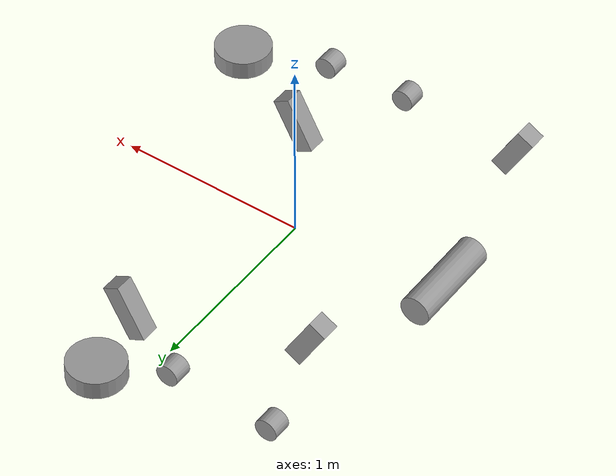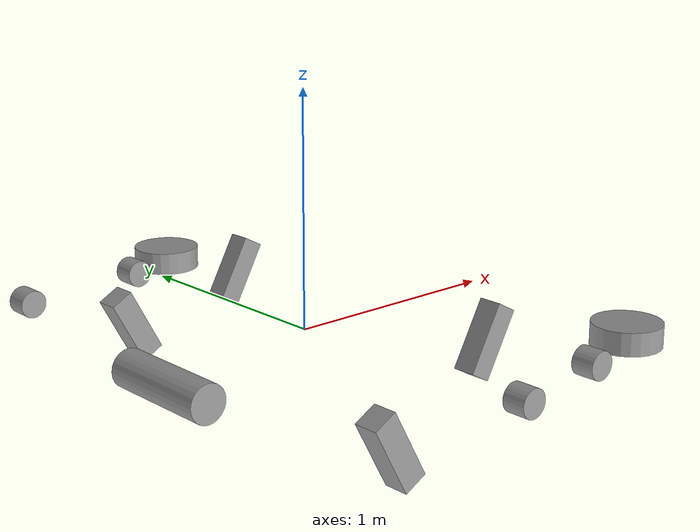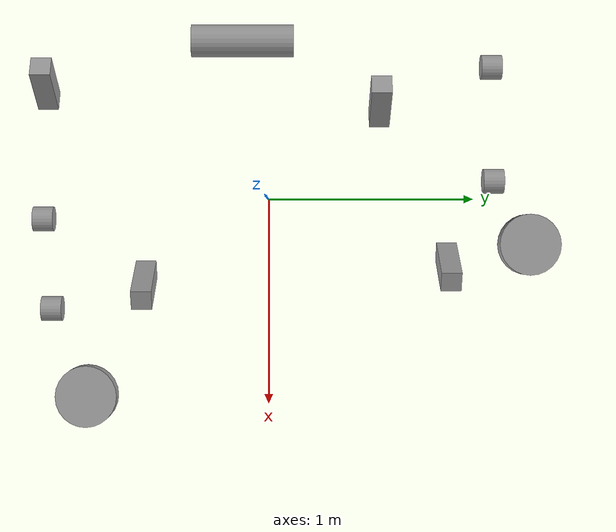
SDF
<?xml version='1.0'?>
<sdf version='1.7'>
  <model name='model'>
    <link name='link_0'>
      <inertial>
        <mass>1</mass>
        <inertia>
          <ixx>0.145833</ixx>
          <ixy>0</ixy>
          <ixz>0</ixz>
          <iyy>0.145833</iyy>
          <iyz>0</iyz>
          <izz>0.125</izz>
        </inertia>
        <pose>0 0 0 0 -0 0</pose>
      </inertial>
      <pose>0.962972 -0.892011 -0.006611 0 -0 0</pose>
      <gravity>1</gravity>
      <self_collide>0</self_collide>
      <kinematic>0</kinematic>
      <enable_wind>0</enable_wind>
      <visual name='visual'>
        <pose>0 0 0 0 -0 0</pose>
        <geometry>
          <cylinder>
            <radius>0.15</radius>
            <length>0.1</length>
          </cylinder>
        </geometry>
        <material>
          <lighting>1</lighting>
          <script>
            <uri>file://media/materials/scripts/gazebo.material</uri>
            <name>Gazebo/Grey</name>
          </script>
          <shader type='pixel'>
            <normal_map>__default__</normal_map>
          </shader>
          <ambient>0.3 0.3 0.3 1</ambient>
          <diffuse>0.7 0.7 0.7 1</diffuse>
          <specular>0.01 0.01 0.01 1</specular>
          <emissive>0 0 0 1</emissive>
        </material>
        <transparency>0</transparency>
        <cast_shadows>1</cast_shadows>
      </visual>
      <collision name='collision'>
        <laser_retro>0</laser_retro>
        <max_contacts>10</max_contacts>
        <pose>0 0 0 0 -0 0</pose>
        <geometry>
          <cylinder>
            <radius>0.15</radius>
            <length>0.1</length>
          </cylinder>
        </geometry>
        <surface>
          <friction>
            <ode>
              <mu>1</mu>
              <mu2>1</mu2>
              <fdir1>0 0 0</fdir1>
              <slip1>0</slip1>
              <slip2>0</slip2>
            </ode>
            <torsional>
              <coefficient>1</coefficient>
              <patch_radius>0</patch_radius>
              <surface_radius>0</surface_radius>
              <use_patch_radius>1</use_patch_radius>
              <ode>
                <slip>0</slip>
              </ode>
            </torsional>
          </friction>
          <bounce>
            <restitution_coefficient>0</restitution_coefficient>
            <threshold>1e+06</threshold>
          </bounce>
          <contact>
            <collide_without_contact>0</collide_without_contact>
            <collide_without_contact_bitmask>1</collide_without_contact_bitmask>
            <collide_bitmask>1</collide_bitmask>
            <ode>
              <soft_cfm>0</soft_cfm>
              <soft_erp>0.2</soft_erp>
              <kp>1e+13</kp>
              <kd>1</kd>
              <max_vel>0.01</max_vel>
              <min_depth>0</min_depth>
            </ode>
            <bullet>
              <split_impulse>1</split_impulse>
              <split_impulse_penetration_threshold>-0.01</split_impulse_penetration_threshold>
              <soft_cfm>0</soft_cfm>
              <soft_erp>0.2</soft_erp>
              <kp>1e+13</kp>
              <kd>1</kd>
            </bullet>
          </contact>
        </surface>
      </collision>
    </link>
    <link name='link_0_clone'>
      <inertial>
        <mass>1</mass>
        <inertia>
          <ixx>0.145833</ixx>
          <ixy>0</ixy>
          <ixz>0</ixz>
          <iyy>0.145833</iyy>
          <iyz>0</iyz>
          <izz>0.125</izz>
        </inertia>
        <pose>0 0 0 0 -0 0</pose>
      </inertial>
      <pose>0.221399 1.27715 -0.006611 0 -0 0</pose>
      <gravity>1</gravity>
      <self_collide>0</self_collide>
      <kinematic>0</kinematic>
      <enable_wind>0</enable_wind>
      <visual name='visual'>
        <pose>0 0 0 0 -0 0</pose>
        <geometry>
          <cylinder>
            <radius>0.15</radius>
            <length>0.1</length>
          </cylinder>
        </geometry>
        <material>
          <lighting>1</lighting>
          <script>
            <uri>file://media/materials/scripts/gazebo.material</uri>
            <name>Gazebo/Grey</name>
          </script>
          <shader type='pixel'>
            <normal_map>__default__</normal_map>
          </shader>
          <ambient>0.3 0.3 0.3 1</ambient>
          <diffuse>0.7 0.7 0.7 1</diffuse>
          <specular>0.01 0.01 0.01 1</specular>
          <emissive>0 0 0 1</emissive>
        </material>
        <transparency>0</transparency>
        <cast_shadows>1</cast_shadows>
      </visual>
      <collision name='collision'>
        <laser_retro>0</laser_retro>
        <max_contacts>10</max_contacts>
        <pose>0 0 0 0 -0 0</pose>
        <geometry>
          <cylinder>
            <radius>0.15</radius>
            <length>0.1</length>
          </cylinder>
        </geometry>
        <surface>
          <friction>
            <ode>
              <mu>1</mu>
              <mu2>1</mu2>
              <fdir1>0 0 0</fdir1>
              <slip1>0</slip1>
              <slip2>0</slip2>
            </ode>
            <torsional>
              <coefficient>1</coefficient>
              <patch_radius>0</patch_radius>
              <surface_radius>0</surface_radius>
              <use_patch_radius>1</use_patch_radius>
              <ode>
                <slip>0</slip>
              </ode>
            </torsional>
          </friction>
          <bounce>
            <restitution_coefficient>0</restitution_coefficient>
            <threshold>1e+06</threshold>
          </bounce>
          <contact>
            <collide_without_contact>0</collide_without_contact>
            <collide_without_contact_bitmask>1</collide_without_contact_bitmask>
            <collide_bitmask>1</collide_bitmask>
            <ode>
              <soft_cfm>0</soft_cfm>
              <soft_erp>0.2</soft_erp>
              <kp>1e+13</kp>
              <kd>1</kd>
              <max_vel>0.01</max_vel>
              <min_depth>0</min_depth>
            </ode>
            <bullet>
              <split_impulse>1</split_impulse>
              <split_impulse_penetration_threshold>-0.01</split_impulse_penetration_threshold>
              <soft_cfm>0</soft_cfm>
              <soft_erp>0.2</soft_erp>
              <kp>1e+13</kp>
              <kd>1</kd>
            </bullet>
          </contact>
        </surface>
      </collision>
    </link>
    <link name='link_1'>
      <inertial>
        <mass>1</mass>
        <inertia>
          <ixx>0.145833</ixx>
          <ixy>0</ixy>
          <ixz>0</ixz>
          <iyy>0.145833</iyy>
          <iyz>0</iyz>
          <izz>0.125</izz>
        </inertia>
        <pose>0 0 0 0 -0 0</pose>
      </inertial>
      <pose>0.533975 -1.0577 0.016159 0 -0 0</pose>
      <gravity>1</gravity>
      <self_collide>0</self_collide>
      <kinematic>0</kinematic>
      <enable_wind>0</enable_wind>
      <visual name='visual'>
        <pose>0 0 0 1.5708 -0 0</pose>
        <geometry>
          <cylinder>
            <radius>0.06</radius>
            <length>0.1</length>
          </cylinder>
        </geometry>
        <material>
          <lighting>1</lighting>
          <script>
            <uri>file://media/materials/scripts/gazebo.material</uri>
            <name>Gazebo/Grey</name>
          </script>
          <shader type='pixel'>
            <normal_map>__default__</normal_map>
          </shader>
          <ambient>0.3 0.3 0.3 1</ambient>
          <diffuse>0.7 0.7 0.7 1</diffuse>
          <specular>0.01 0.01 0.01 1</specular>
          <emissive>0 0 0 1</emissive>
        </material>
        <transparency>0</transparency>
        <cast_shadows>1</cast_shadows>
      </visual>
      <collision name='collision'>
        <laser_retro>0</laser_retro>
        <max_contacts>10</max_contacts>
        <pose>0 0 0 1.5708 -0 0</pose>
        <geometry>
          <cylinder>
            <radius>0.06</radius>
            <length>0.1</length>
          </cylinder>
        </geometry>
        <surface>
          <friction>
            <ode>
              <mu>1</mu>
              <mu2>1</mu2>
              <fdir1>0 0 0</fdir1>
              <slip1>0</slip1>
              <slip2>0</slip2>
            </ode>
            <torsional>
              <coefficient>1</coefficient>
              <patch_radius>0</patch_radius>
              <surface_radius>0</surface_radius>
              <use_patch_radius>1</use_patch_radius>
              <ode>
                <slip>0</slip>
              </ode>
            </torsional>
          </friction>
          <bounce>
            <restitution_coefficient>0</restitution_coefficient>
            <threshold>1e+06</threshold>
          </bounce>
          <contact>
            <collide_without_contact>0</collide_without_contact>
            <collide_without_contact_bitmask>1</collide_without_contact_bitmask>
            <collide_bitmask>1</collide_bitmask>
            <ode>
              <soft_cfm>0</soft_cfm>
              <soft_erp>0.2</soft_erp>
              <kp>1e+13</kp>
              <kd>1</kd>
              <max_vel>0.01</max_vel>
              <min_depth>0</min_depth>
            </ode>
            <bullet>
              <split_impulse>1</split_impulse>
              <split_impulse_penetration_threshold>-0.01</split_impulse_penetration_threshold>
              <soft_cfm>0</soft_cfm>
              <soft_erp>0.2</soft_erp>
              <kp>1e+13</kp>
              <kd>1</kd>
            </bullet>
          </contact>
        </surface>
      </collision>
    </link>
    <link name='link_1_clone'>
      <inertial>
        <mass>1</mass>
        <inertia>
          <ixx>0.145833</ixx>
          <ixy>0</ixy>
          <ixz>0</ixz>
          <iyy>0.145833</iyy>
          <iyz>0</iyz>
          <izz>0.125</izz>
        </inertia>
        <pose>0 0 0 0 -0 0</pose>
      </inertial>
      <pose>-0.088524 1.09642 0.016159 0 -0 0</pose>
      <gravity>1</gravity>
      <self_collide>0</self_collide>
      <kinematic>0</kinematic>
      <enable_wind>0</enable_wind>
      <visual name='visual'>
        <pose>0 0 0 1.5708 -0 0</pose>
        <geometry>
          <cylinder>
            <radius>0.06</radius>
            <length>0.1</length>
          </cylinder>
        </geometry>
        <material>
          <lighting>1</lighting>
          <script>
            <uri>file://media/materials/scripts/gazebo.material</uri>
            <name>Gazebo/Grey</name>
          </script>
          <shader type='pixel'>
            <normal_map>__default__</normal_map>
          </shader>
          <ambient>0.3 0.3 0.3 1</ambient>
          <diffuse>0.7 0.7 0.7 1</diffuse>
          <specular>0.01 0.01 0.01 1</specular>
          <emissive>0 0 0 1</emissive>
        </material>
        <transparency>0</transparency>
        <cast_shadows>1</cast_shadows>
      </visual>
      <collision name='collision'>
        <laser_retro>0</laser_retro>
        <max_contacts>10</max_contacts>
        <pose>0 0 0 1.5708 -0 0</pose>
        <geometry>
          <cylinder>
            <radius>0.06</radius>
            <length>0.1</length>
          </cylinder>
        </geometry>
        <surface>
          <friction>
            <ode>
              <mu>1</mu>
              <mu2>1</mu2>
              <fdir1>0 0 0</fdir1>
              <slip1>0</slip1>
              <slip2>0</slip2>
            </ode>
            <torsional>
              <coefficient>1</coefficient>
              <patch_radius>0</patch_radius>
              <surface_radius>0</surface_radius>
              <use_patch_radius>1</use_patch_radius>
              <ode>
                <slip>0</slip>
              </ode>
            </torsional>
          </friction>
          <bounce>
            <restitution_coefficient>0</restitution_coefficient>
            <threshold>1e+06</threshold>
          </bounce>
          <contact>
            <collide_without_contact>0</collide_without_contact>
            <collide_without_contact_bitmask>1</collide_without_contact_bitmask>
            <collide_bitmask>1</collide_bitmask>
            <ode>
              <soft_cfm>0</soft_cfm>
              <soft_erp>0.2</soft_erp>
              <kp>1e+13</kp>
              <kd>1</kd>
              <max_vel>0.01</max_vel>
              <min_depth>0</min_depth>
            </ode>
            <bullet>
              <split_impulse>1</split_impulse>
              <split_impulse_penetration_threshold>-0.01</split_impulse_penetration_threshold>
              <soft_cfm>0</soft_cfm>
              <soft_erp>0.2</soft_erp>
              <kp>1e+13</kp>
              <kd>1</kd>
            </bullet>
          </contact>
        </surface>
      </collision>
    </link>
    <link name='link_2'>
      <inertial>
        <mass>1</mass>
        <inertia>
          <ixx>0.145833</ixx>
          <ixy>0</ixy>
          <ixz>0</ixz>
          <iyy>0.145833</iyy>
          <iyz>0</iyz>
          <izz>0.125</izz>
        </inertia>
        <pose>0 0 0 0 -0 0</pose>
      </inertial>
      <pose>0.095543 -1.10354 -0.006611 0 -0 0</pose>
      <gravity>1</gravity>
      <self_collide>0</self_collide>
      <kinematic>0</kinematic>
      <enable_wind>0</enable_wind>
      <visual name='visual'>
        <pose>0 0 0 1.5708 -0 0</pose>
        <geometry>
          <cylinder>
            <radius>0.06</radius>
            <length>0.1</length>
          </cylinder>
        </geometry>
        <material>
          <lighting>1</lighting>
          <script>
            <uri>file://media/materials/scripts/gazebo.material</uri>
            <name>Gazebo/Grey</name>
          </script>
          <shader type='pixel'>
            <normal_map>__default__</normal_map>
          </shader>
          <ambient>0.3 0.3 0.3 1</ambient>
          <diffuse>0.7 0.7 0.7 1</diffuse>
          <specular>0.01 0.01 0.01 1</specular>
          <emissive>0 0 0 1</emissive>
        </material>
        <transparency>0</transparency>
        <cast_shadows>1</cast_shadows>
      </visual>
      <collision name='collision'>
        <laser_retro>0</laser_retro>
        <max_contacts>10</max_contacts>
        <pose>0 0 0 1.5708 -0 0</pose>
        <geometry>
          <cylinder>
            <radius>0.06</radius>
            <length>0.1</length>
          </cylinder>
        </geometry>
        <surface>
          <friction>
            <ode>
              <mu>1</mu>
              <mu2>1</mu2>
              <fdir1>0 0 0</fdir1>
              <slip1>0</slip1>
              <slip2>0</slip2>
            </ode>
            <torsional>
              <coefficient>1</coefficient>
              <patch_radius>0</patch_radius>
              <surface_radius>0</surface_radius>
              <use_patch_radius>1</use_patch_radius>
              <ode>
                <slip>0</slip>
              </ode>
            </torsional>
          </friction>
          <bounce>
            <restitution_coefficient>0</restitution_coefficient>
            <threshold>1e+06</threshold>
          </bounce>
          <contact>
            <collide_without_contact>0</collide_without_contact>
            <collide_without_contact_bitmask>1</collide_without_contact_bitmask>
            <collide_bitmask>1</collide_bitmask>
            <ode>
              <soft_cfm>0</soft_cfm>
              <soft_erp>0.2</soft_erp>
              <kp>1e+13</kp>
              <kd>1</kd>
              <max_vel>0.01</max_vel>
              <min_depth>0</min_depth>
            </ode>
            <bullet>
              <split_impulse>1</split_impulse>
              <split_impulse_penetration_threshold>-0.01</split_impulse_penetration_threshold>
              <soft_cfm>0</soft_cfm>
              <soft_erp>0.2</soft_erp>
              <kp>1e+13</kp>
              <kd>1</kd>
            </bullet>
          </contact>
        </surface>
      </collision>
    </link>
    <link name='link_2_clone'>
      <inertial>
        <mass>1</mass>
        <inertia>
          <ixx>0.145833</ixx>
          <ixy>0</ixy>
          <ixz>0</ixz>
          <iyy>0.145833</iyy>
          <iyz>0</iyz>
          <izz>0.125</izz>
        </inertia>
        <pose>0 0 0 0 -0 0</pose>
      </inertial>
      <pose>-0.64716 1.08882 -0.006611 0 -0 0</pose>
      <gravity>1</gravity>
      <self_collide>0</self_collide>
      <kinematic>0</kinematic>
      <enable_wind>0</enable_wind>
      <visual name='visual'>
        <pose>0 0 0 1.5708 -0 0</pose>
        <geometry>
          <cylinder>
            <radius>0.06</radius>
            <length>0.1</length>
          </cylinder>
        </geometry>
        <material>
          <lighting>1</lighting>
          <script>
            <uri>file://media/materials/scripts/gazebo.material</uri>
            <name>Gazebo/Grey</name>
          </script>
          <shader type='pixel'>
            <normal_map>__default__</normal_map>
          </shader>
          <ambient>0.3 0.3 0.3 1</ambient>
          <diffuse>0.7 0.7 0.7 1</diffuse>
          <specular>0.01 0.01 0.01 1</specular>
          <emissive>0 0 0 1</emissive>
        </material>
        <transparency>0</transparency>
        <cast_shadows>1</cast_shadows>
      </visual>
      <collision name='collision'>
        <laser_retro>0</laser_retro>
        <max_contacts>10</max_contacts>
        <pose>0 0 0 1.5708 -0 0</pose>
        <geometry>
          <cylinder>
            <radius>0.06</radius>
            <length>0.1</length>
          </cylinder>
        </geometry>
        <surface>
          <friction>
            <ode>
              <mu>1</mu>
              <mu2>1</mu2>
              <fdir1>0 0 0</fdir1>
              <slip1>0</slip1>
              <slip2>0</slip2>
            </ode>
            <torsional>
              <coefficient>1</coefficient>
              <patch_radius>0</patch_radius>
              <surface_radius>0</surface_radius>
              <use_patch_radius>1</use_patch_radius>
              <ode>
                <slip>0</slip>
              </ode>
            </torsional>
          </friction>
          <bounce>
            <restitution_coefficient>0</restitution_coefficient>
            <threshold>1e+06</threshold>
          </bounce>
          <contact>
            <collide_without_contact>0</collide_without_contact>
            <collide_without_contact_bitmask>1</collide_without_contact_bitmask>
            <collide_bitmask>1</collide_bitmask>
            <ode>
              <soft_cfm>0</soft_cfm>
              <soft_erp>0.2</soft_erp>
              <kp>1e+13</kp>
              <kd>1</kd>
              <max_vel>0.01</max_vel>
              <min_depth>0</min_depth>
            </ode>
            <bullet>
              <split_impulse>1</split_impulse>
              <split_impulse_penetration_threshold>-0.01</split_impulse_penetration_threshold>
              <soft_cfm>0</soft_cfm>
              <soft_erp>0.2</soft_erp>
              <kp>1e+13</kp>
              <kd>1</kd>
            </bullet>
          </contact>
        </surface>
      </collision>
    </link>
    <link name='link_3'>
      <inertial>
        <mass>1</mass>
        <inertia>
          <ixx>0.166667</ixx>
          <ixy>0</ixy>
          <ixz>0</ixz>
          <iyy>0.166667</iyy>
          <iyz>0</iyz>
          <izz>0.166667</izz>
        </inertia>
        <pose>0 0 0 0 -0 0</pose>
      </inertial>
      <pose>-0.566221 -1.09881 -0.006611 0 -0 0</pose>
      <gravity>1</gravity>
      <self_collide>0</self_collide>
      <kinematic>0</kinematic>
      <enable_wind>0</enable_wind>
      <visual name='visual'>
        <pose>0 0 0 0 -0.5 0</pose>
        <geometry>
          <box>
            <size>0.1 0.1 0.3</size>
          </box>
        </geometry>
        <material>
          <lighting>1</lighting>
          <script>
            <uri>file://media/materials/scripts/gazebo.material</uri>
            <name>Gazebo/Grey</name>
          </script>
          <shader type='pixel'>
            <normal_map>__default__</normal_map>
          </shader>
          <ambient>0.3 0.3 0.3 1</ambient>
          <diffuse>0.7 0.7 0.7 1</diffuse>
          <specular>0.01 0.01 0.01 1</specular>
          <emissive>0 0 0 1</emissive>
        </material>
        <transparency>0</transparency>
        <cast_shadows>1</cast_shadows>
      </visual>
      <collision name='collision'>
        <laser_retro>0</laser_retro>
        <max_contacts>10</max_contacts>
        <pose>0 0 0 0 -0.5 0</pose>
        <geometry>
          <box>
            <size>0.1 0.1 0.3</size>
          </box>
        </geometry>
        <surface>
          <friction>
            <ode>
              <mu>1</mu>
              <mu2>1</mu2>
              <fdir1>0 0 0</fdir1>
              <slip1>0</slip1>
              <slip2>0</slip2>
            </ode>
            <torsional>
              <coefficient>1</coefficient>
              <patch_radius>0</patch_radius>
              <surface_radius>0</surface_radius>
              <use_patch_radius>1</use_patch_radius>
              <ode>
                <slip>0</slip>
              </ode>
            </torsional>
          </friction>
          <bounce>
            <restitution_coefficient>0</restitution_coefficient>
            <threshold>1e+06</threshold>
          </bounce>
          <contact>
            <collide_without_contact>0</collide_without_contact>
            <collide_without_contact_bitmask>1</collide_without_contact_bitmask>
            <collide_bitmask>1</collide_bitmask>
            <ode>
              <soft_cfm>0</soft_cfm>
              <soft_erp>0.2</soft_erp>
              <kp>1e+13</kp>
              <kd>1</kd>
              <max_vel>0.01</max_vel>
              <min_depth>0</min_depth>
            </ode>
            <bullet>
              <split_impulse>1</split_impulse>
              <split_impulse_penetration_threshold>-0.01</split_impulse_penetration_threshold>
              <soft_cfm>0</soft_cfm>
              <soft_erp>0.2</soft_erp>
              <kp>1e+13</kp>
              <kd>1</kd>
            </bullet>
          </contact>
        </surface>
      </collision>
    </link>
    <link name='link_3_clone'>
      <inertial>
        <mass>1</mass>
        <inertia>
          <ixx>0.166667</ixx>
          <ixy>0</ixy>
          <ixz>0</ixz>
          <iyy>0.166667</iyy>
          <iyz>0</iyz>
          <izz>0.166667</izz>
        </inertia>
        <pose>0 0 0 0 -0 0</pose>
      </inertial>
      <pose>-0.479561 0.546893 -0.006611 0 -0 0</pose>
      <gravity>1</gravity>
      <self_collide>0</self_collide>
      <kinematic>0</kinematic>
      <enable_wind>0</enable_wind>
      <visual name='visual'>
        <pose>0 0 0 0 -0.5 0</pose>
        <geometry>
          <box>
            <size>0.1 0.1 0.3</size>
          </box>
        </geometry>
        <material>
          <lighting>1</lighting>
          <script>
            <uri>file://media/materials/scripts/gazebo.material</uri>
            <name>Gazebo/Grey</name>
          </script>
          <shader type='pixel'>
            <normal_map>__default__</normal_map>
          </shader>
          <ambient>0.3 0.3 0.3 1</ambient>
          <diffuse>0.7 0.7 0.7 1</diffuse>
          <specular>0.01 0.01 0.01 1</specular>
          <emissive>0 0 0 1</emissive>
        </material>
        <transparency>0</transparency>
        <cast_shadows>1</cast_shadows>
      </visual>
      <collision name='collision'>
        <laser_retro>0</laser_retro>
        <max_contacts>10</max_contacts>
        <pose>0 0 0 0 -0.5 0</pose>
        <geometry>
          <box>
            <size>0.1 0.1 0.3</size>
          </box>
        </geometry>
        <surface>
          <friction>
            <ode>
              <mu>1</mu>
              <mu2>1</mu2>
              <fdir1>0 0 0</fdir1>
              <slip1>0</slip1>
              <slip2>0</slip2>
            </ode>
            <torsional>
              <coefficient>1</coefficient>
              <patch_radius>0</patch_radius>
              <surface_radius>0</surface_radius>
              <use_patch_radius>1</use_patch_radius>
              <ode>
                <slip>0</slip>
              </ode>
            </torsional>
          </friction>
          <bounce>
            <restitution_coefficient>0</restitution_coefficient>
            <threshold>1e+06</threshold>
          </bounce>
          <contact>
            <collide_without_contact>0</collide_without_contact>
            <collide_without_contact_bitmask>1</collide_without_contact_bitmask>
            <collide_bitmask>1</collide_bitmask>
            <ode>
              <soft_cfm>0</soft_cfm>
              <soft_erp>0.2</soft_erp>
              <kp>1e+13</kp>
              <kd>1</kd>
              <max_vel>0.01</max_vel>
              <min_depth>0</min_depth>
            </ode>
            <bullet>
              <split_impulse>1</split_impulse>
              <split_impulse_penetration_threshold>-0.01</split_impulse_penetration_threshold>
              <soft_cfm>0</soft_cfm>
              <soft_erp>0.2</soft_erp>
              <kp>1e+13</kp>
              <kd>1</kd>
            </bullet>
          </contact>
        </surface>
      </collision>
    </link>
    <link name='link_4'>
      <inertial>
        <mass>1</mass>
        <inertia>
          <ixx>0.166667</ixx>
          <ixy>0</ixy>
          <ixz>0</ixz>
          <iyy>0.166667</iyy>
          <iyz>0</iyz>
          <izz>0.166667</izz>
        </inertia>
        <pose>0 0 0 0 -0 0</pose>
      </inertial>
      <pose>0.416954 -0.61021 0.02057 0 -0 0</pose>
      <gravity>1</gravity>
      <self_collide>0</self_collide>
      <kinematic>0</kinematic>
      <enable_wind>0</enable_wind>
      <visual name='visual'>
        <pose>0 0 0 0 0.5 0</pose>
        <geometry>
          <box>
            <size>0.1 0.1 0.3</size>
          </box>
        </geometry>
        <material>
          <lighting>1</lighting>
          <script>
            <uri>file://media/materials/scripts/gazebo.material</uri>
            <name>Gazebo/Grey</name>
          </script>
          <shader type='pixel'>
            <normal_map>__default__</normal_map>
          </shader>
          <ambient>0.3 0.3 0.3 1</ambient>
          <diffuse>0.7 0.7 0.7 1</diffuse>
          <specular>0.01 0.01 0.01 1</specular>
          <emissive>0 0 0 1</emissive>
        </material>
        <transparency>0</transparency>
        <cast_shadows>1</cast_shadows>
      </visual>
      <collision name='collision'>
        <laser_retro>0</laser_retro>
        <max_contacts>10</max_contacts>
        <pose>0 0 0 0 0.5 0</pose>
        <geometry>
          <box>
            <size>0.1 0.1 0.3</size>
          </box>
        </geometry>
        <surface>
          <friction>
            <ode>
              <mu>1</mu>
              <mu2>1</mu2>
              <fdir1>0 0 0</fdir1>
              <slip1>0</slip1>
              <slip2>0</slip2>
            </ode>
            <torsional>
              <coefficient>1</coefficient>
              <patch_radius>0</patch_radius>
              <surface_radius>0</surface_radius>
              <use_patch_radius>1</use_patch_radius>
              <ode>
                <slip>0</slip>
              </ode>
            </torsional>
          </friction>
          <bounce>
            <restitution_coefficient>0</restitution_coefficient>
            <threshold>1e+06</threshold>
          </bounce>
          <contact>
            <collide_without_contact>0</collide_without_contact>
            <collide_without_contact_bitmask>1</collide_without_contact_bitmask>
            <collide_bitmask>1</collide_bitmask>
            <ode>
              <soft_cfm>0</soft_cfm>
              <soft_erp>0.2</soft_erp>
              <kp>1e+13</kp>
              <kd>1</kd>
              <max_vel>0.01</max_vel>
              <min_depth>0</min_depth>
            </ode>
            <bullet>
              <split_impulse>1</split_impulse>
              <split_impulse_penetration_threshold>-0.01</split_impulse_penetration_threshold>
              <soft_cfm>0</soft_cfm>
              <soft_erp>0.2</soft_erp>
              <kp>1e+13</kp>
              <kd>1</kd>
            </bullet>
          </contact>
        </surface>
      </collision>
    </link>
    <link name='link_4_clone'>
      <inertial>
        <mass>1</mass>
        <inertia>
          <ixx>0.166667</ixx>
          <ixy>0</ixy>
          <ixz>0</ixz>
          <iyy>0.166667</iyy>
          <iyz>0</iyz>
          <izz>0.166667</izz>
        </inertia>
        <pose>0 0 0 0 -0 0</pose>
      </inertial>
      <pose>0.3288 0.881921 -0.006611 0 -0 0</pose>
      <gravity>1</gravity>
      <self_collide>0</self_collide>
      <kinematic>0</kinematic>
      <enable_wind>0</enable_wind>
      <visual name='visual'>
        <pose>0 0 0 0 0.5 0</pose>
        <geometry>
          <box>
            <size>0.1 0.1 0.3</size>
          </box>
        </geometry>
        <material>
          <lighting>1</lighting>
          <script>
            <uri>file://media/materials/scripts/gazebo.material</uri>
            <name>Gazebo/Grey</name>
          </script>
          <shader type='pixel'>
            <normal_map>__default__</normal_map>
          </shader>
          <ambient>0.3 0.3 0.3 1</ambient>
          <diffuse>0.7 0.7 0.7 1</diffuse>
          <specular>0.01 0.01 0.01 1</specular>
          <emissive>0 0 0 1</emissive>
        </material>
        <transparency>0</transparency>
        <cast_shadows>1</cast_shadows>
      </visual>
      <collision name='collision'>
        <laser_retro>0</laser_retro>
        <max_contacts>10</max_contacts>
        <pose>0 0 0 0 0.5 0</pose>
        <geometry>
          <box>
            <size>0.1 0.1 0.3</size>
          </box>
        </geometry>
        <surface>
          <friction>
            <ode>
              <mu>1</mu>
              <mu2>1</mu2>
              <fdir1>0 0 0</fdir1>
              <slip1>0</slip1>
              <slip2>0</slip2>
            </ode>
            <torsional>
              <coefficient>1</coefficient>
              <patch_radius>0</patch_radius>
              <surface_radius>0</surface_radius>
              <use_patch_radius>1</use_patch_radius>
              <ode>
                <slip>0</slip>
              </ode>
            </torsional>
          </friction>
          <bounce>
            <restitution_coefficient>0</restitution_coefficient>
            <threshold>1e+06</threshold>
          </bounce>
          <contact>
            <collide_without_contact>0</collide_without_contact>
            <collide_without_contact_bitmask>1</collide_without_contact_bitmask>
            <collide_bitmask>1</collide_bitmask>
            <ode>
              <soft_cfm>0</soft_cfm>
              <soft_erp>0.2</soft_erp>
              <kp>1e+13</kp>
              <kd>1</kd>
              <max_vel>0.01</max_vel>
              <min_depth>0</min_depth>
            </ode>
            <bullet>
              <split_impulse>1</split_impulse>
              <split_impulse_penetration_threshold>-0.01</split_impulse_penetration_threshold>
              <soft_cfm>0</soft_cfm>
              <soft_erp>0.2</soft_erp>
              <kp>1e+13</kp>
              <kd>1</kd>
            </bullet>
          </contact>
        </surface>
      </collision>
    </link>
    <link name='link_5'>
      <inertial>
        <mass>1</mass>
        <inertia>
          <ixx>0.145833</ixx>
          <ixy>0</ixy>
          <ixz>0</ixz>
          <iyy>0.145833</iyy>
          <iyz>0</iyz>
          <izz>0.125</izz>
        </inertia>
        <pose>0 0 0 0 -0 0</pose>
      </inertial>
      <pose>-0.778134 -0.128942 -0.006611 0 -0 0</pose>
      <gravity>1</gravity>
      <self_collide>0</self_collide>
      <kinematic>0</kinematic>
      <enable_wind>0</enable_wind>
      <visual name='visual'>
        <pose>0 0 0 1.5708 -0 0</pose>
        <geometry>
          <cylinder>
            <radius>0.08</radius>
            <length>0.5</length>
          </cylinder>
        </geometry>
        <material>
          <lighting>1</lighting>
          <script>
            <uri>file://media/materials/scripts/gazebo.material</uri>
            <name>Gazebo/Grey</name>
          </script>
          <shader type='pixel'>
            <normal_map>__default__</normal_map>
          </shader>
          <ambient>0.3 0.3 0.3 1</ambient>
          <diffuse>0.7 0.7 0.7 1</diffuse>
          <specular>0.01 0.01 0.01 1</specular>
          <emissive>0 0 0 1</emissive>
        </material>
        <transparency>0</transparency>
        <cast_shadows>1</cast_shadows>
      </visual>
      <collision name='collision'>
        <laser_retro>0</laser_retro>
        <max_contacts>10</max_contacts>
        <pose>0 0 0 1.5708 -0 0</pose>
        <geometry>
          <cylinder>
            <radius>0.08</radius>
            <length>0.5</length>
          </cylinder>
        </geometry>
        <surface>
          <friction>
            <ode>
              <mu>1</mu>
              <mu2>1</mu2>
              <fdir1>0 0 0</fdir1>
              <slip1>0</slip1>
              <slip2>0</slip2>
            </ode>
            <torsional>
              <coefficient>1</coefficient>
              <patch_radius>0</patch_radius>
              <surface_radius>0</surface_radius>
              <use_patch_radius>1</use_patch_radius>
              <ode>
                <slip>0</slip>
              </ode>
            </torsional>
          </friction>
          <bounce>
            <restitution_coefficient>0</restitution_coefficient>
            <threshold>1e+06</threshold>
          </bounce>
          <contact>
            <collide_without_contact>0</collide_without_contact>
            <collide_without_contact_bitmask>1</collide_without_contact_bitmask>
            <collide_bitmask>1</collide_bitmask>
            <ode>
              <soft_cfm>0</soft_cfm>
              <soft_erp>0.2</soft_erp>
              <kp>1e+13</kp>
              <kd>1</kd>
              <max_vel>0.01</max_vel>
              <min_depth>0</min_depth>
            </ode>
            <bullet>
              <split_impulse>1</split_impulse>
              <split_impulse_penetration_threshold>-0.01</split_impulse_penetration_threshold>
              <soft_cfm>0</soft_cfm>
              <soft_erp>0.2</soft_erp>
              <kp>1e+13</kp>
              <kd>1</kd>
            </bullet>
          </contact>
        </surface>
      </collision>
    </link>
    <static>0</static>
    <allow_auto_disable>1</allow_auto_disable>
  </model>
</sdf>
